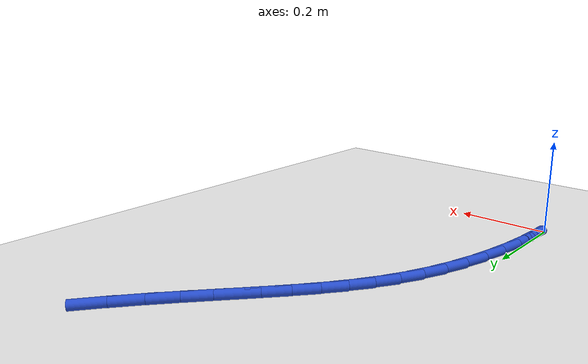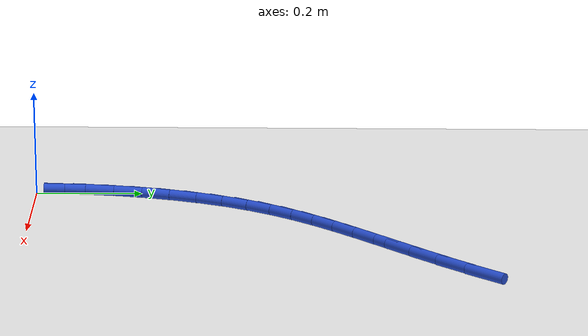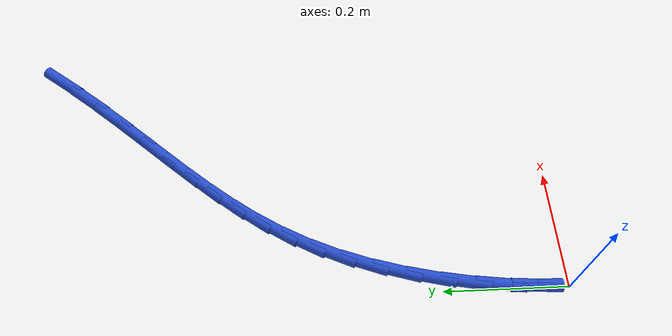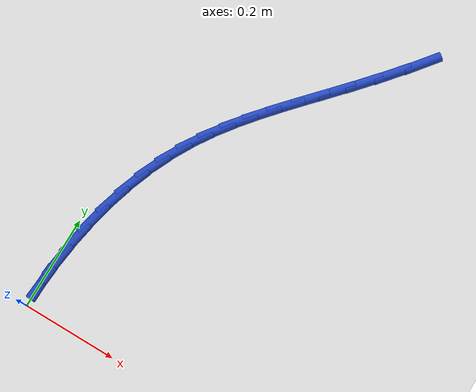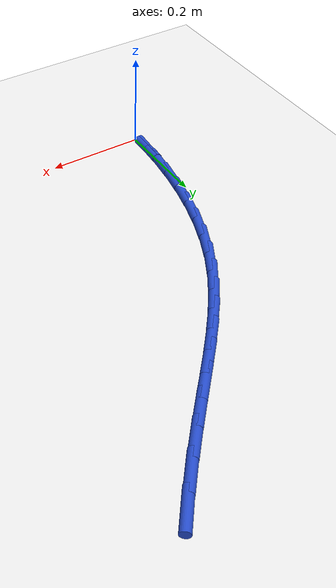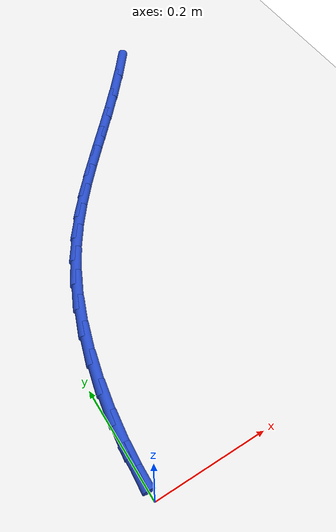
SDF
<sdf version="1.6">
 <world name="default">
  <model name="ground_plane">
   <static>1</static>
   <link name="link">
    <collision name="collision">
     <geometry><plane><normal>0 0 1</normal><size>100 100</size></plane></geometry>
     <surface><friction><ode><mu>100</mu><mu2>50</mu2></ode></friction></surface>
    </collision>
    <visual name="visual">
     <cast_shadows>0</cast_shadows>
     <geometry><plane><normal>0 0 1</normal><size>100 100</size></plane></geometry>
     <material>
      <script><uri>file://media/materials/scripts/gazebo.material</uri><name>Gazebo/WhiteGlow</name></script>
     </material>
    </visual>
   </link>
  </model>
  <model name="line">
   <link name="link_1">
    <pose>0.0014229188802898308 0.05459839344539533 0.01 0 1.57 1.4936639560395963</pose>
    <collision name="collision">
     <geometry><cylinder><radius>0.01</radius><length>0.08</length></cylinder></geometry>
    </collision>
    <visual name="visual">
     <material>
      <script><name>Gazebo/Blue</name><uri>file://media/materials/scripts/gazebo.material</uri></script>
     </material>
     <geometry><cylinder><radius>0.01</radius><length>0.08</length></cylinder></geometry>
    </visual>
   </link>
   <link name="link_2">
    <pose>0.005649222591563145 0.1092825554434124 0.01 0 1.57 1.4421383450726681</pose>
    <collision name="collision">
     <geometry><cylinder><radius>0.01</radius><length>0.08</length></cylinder></geometry>
    </collision>
    <visual name="visual">
     <material>
      <script><name>Gazebo/Blue</name><uri>file://media/materials/scripts/gazebo.material</uri></script>
     </material>
     <geometry><cylinder><radius>0.01</radius><length>0.08</length></cylinder></geometry>
    </visual>
   </link>
   <link name="link_3">
    <pose>0.012674637058225538 0.16358628323030236 0.01 0 1.57 1.3891185103644323</pose>
    <collision name="collision">
     <geometry><cylinder><radius>0.01</radius><length>0.08</length></cylinder></geometry>
    </collision>
    <visual name="visual">
     <material>
      <script><name>Gazebo/Blue</name><uri>file://media/materials/scripts/gazebo.material</uri></script>
     </material>
     <geometry><cylinder><radius>0.01</radius><length>0.08</length></cylinder></geometry>
    </visual>
   </link>
   <link name="link_4">
    <pose>0.0224948882046826 0.2170433740423164 0.01 0 1.57 1.333507791245873</pose>
    <collision name="collision">
     <geometry><cylinder><radius>0.01</radius><length>0.08</length></cylinder></geometry>
    </collision>
    <visual name="visual">
     <material>
      <script><name>Gazebo/Blue</name><uri>file://media/materials/scripts/gazebo.material</uri></script>
     </material>
     <geometry><cylinder><radius>0.01</radius><length>0.08</length></cylinder></geometry>
    </visual>
   </link>
   <link name="link_5">
    <pose>0.03510570195533986 0.26918762511570565 0.01 0 1.57 1.274110096249701</pose>
    <collision name="collision">
     <geometry><cylinder><radius>0.01</radius><length>0.08</length></cylinder></geometry>
    </collision>
    <visual name="visual">
     <material>
      <script><name>Gazebo/Blue</name><uri>file://media/materials/scripts/gazebo.material</uri></script>
     </material>
     <geometry><cylinder><radius>0.01</radius><length>0.08</length></cylinder></geometry>
    </visual>
   </link>
   <link name="link_6">
    <pose>0.05050280423460295 0.31955283368672155 0.01 0 1.57 1.2095841343453633</pose>
    <collision name="collision">
     <geometry><cylinder><radius>0.01</radius><length>0.08</length></cylinder></geometry>
    </collision>
    <visual name="visual">
     <material>
      <script><name>Gazebo/Blue</name><uri>file://media/materials/scripts/gazebo.material</uri></script>
     </material>
     <geometry><cylinder><radius>0.01</radius><length>0.08</length></cylinder></geometry>
    </visual>
   </link>
   <link name="link_7">
    <pose>0.06868192096687742 0.36767279699161515 0.01 0 1.57 1.1384117896232102</pose>
    <collision name="collision">
     <geometry><cylinder><radius>0.01</radius><length>0.08</length></cylinder></geometry>
    </collision>
    <visual name="visual">
     <material>
      <script><name>Gazebo/Blue</name><uri>file://media/materials/scripts/gazebo.material</uri></script>
     </material>
     <geometry><cylinder><radius>0.01</radius><length>0.08</length></cylinder></geometry>
    </visual>
   </link>
   <link name="link_8">
    <pose>0.08963869787432686 0.4130819203028877 0.01 0 1.57 1.062642803439044</pose>
    <collision name="collision">
     <geometry><cylinder><radius>0.01</radius><length>0.08</length></cylinder></geometry>
    </collision>
    <visual name="visual">
     <material>
      <script><name>Gazebo/Blue</name><uri>file://media/materials/scripts/gazebo.material</uri></script>
     </material>
     <geometry><cylinder><radius>0.01</radius><length>0.08</length></cylinder></geometry>
    </visual>
   </link>
   <link name="link_9">
    <pose>0.11332873403195523 0.4556182140362352 0.01 0 1.57 0.9929972902564257</pose>
    <collision name="collision">
     <geometry><cylinder><radius>0.01</radius><length>0.08</length></cylinder></geometry>
    </collision>
    <visual name="visual">
     <material>
      <script><name>Gazebo/Blue</name><uri>file://media/materials/scripts/gazebo.material</uri></script>
     </material>
     <geometry><cylinder><radius>0.01</radius><length>0.08</length></cylinder></geometry>
    </visual>
   </link>
   <link name="link_10">
    <pose>0.13960282709685687 0.49591421828082727 0.01 0 1.57 0.9342637249670979</pose>
    <collision name="collision">
     <geometry><cylinder><radius>0.01</radius><length>0.08</length></cylinder></geometry>
    </collision>
    <visual name="visual">
     <material>
      <script><name>Gazebo/Blue</name><uri>file://media/materials/scripts/gazebo.material</uri></script>
     </material>
     <geometry><cylinder><radius>0.01</radius><length>0.08</length></cylinder></geometry>
    </visual>
   </link>
   <link name="link_11">
    <pose>0.168294841850847 0.5347308461205417 0.01 0 1.57 0.8886530395660981</pose>
    <collision name="collision">
     <geometry><cylinder><radius>0.01</radius><length>0.08</length></cylinder></geometry>
    </collision>
    <visual name="visual">
     <material>
      <script><name>Gazebo/Blue</name><uri>file://media/materials/scripts/gazebo.material</uri></script>
     </material>
     <geometry><cylinder><radius>0.01</radius><length>0.08</length></cylinder></geometry>
    </visual>
   </link>
   <link name="link_12">
    <pose>0.19923864307574055 0.5728290106392558 0.01 0 1.57 0.8570912512732618</pose>
    <collision name="collision">
     <geometry><cylinder><radius>0.01</radius><length>0.08</length></cylinder></geometry>
    </collision>
    <visual name="visual">
     <material>
      <script><name>Gazebo/Blue</name><uri>file://media/materials/scripts/gazebo.material</uri></script>
     </material>
     <geometry><cylinder><radius>0.01</radius><length>0.08</length></cylinder></geometry>
    </visual>
   </link>
   <link name="link_13">
    <pose>0.23226809555335265 0.610969624920847 0.01 0 1.57 0.8394103957964334</pose>
    <collision name="collision">
     <geometry><cylinder><radius>0.01</radius><length>0.08</length></cylinder></geometry>
    </collision>
    <visual name="visual">
     <material>
      <script><name>Gazebo/Blue</name><uri>file://media/materials/scripts/gazebo.material</uri></script>
     </material>
     <geometry><cylinder><radius>0.01</radius><length>0.08</length></cylinder></geometry>
    </visual>
   </link>
   <link name="link_14">
    <pose>0.2672170640654984 0.6499136020491925 0.01 0 1.57 0.8346508001226272</pose>
    <collision name="collision">
     <geometry><cylinder><radius>0.01</radius><length>0.08</length></cylinder></geometry>
    </collision>
    <visual name="visual">
     <material>
      <script><name>Gazebo/Blue</name><uri>file://media/materials/scripts/gazebo.material</uri></script>
     </material>
     <geometry><cylinder><radius>0.01</radius><length>0.08</length></cylinder></geometry>
    </visual>
   </link>
   <link name="link_15">
    <pose>0.3039194133939929 0.6904218551081704 0.01 0 1.57 0.8413514955589014</pose>
    <collision name="collision">
     <geometry><cylinder><radius>0.01</radius><length>0.08</length></cylinder></geometry>
    </collision>
    <visual name="visual">
     <material>
      <script><name>Gazebo/Blue</name><uri>file://media/materials/scripts/gazebo.material</uri></script>
     </material>
     <geometry><cylinder><radius>0.01</radius><length>0.08</length></cylinder></geometry>
    </visual>
   </link>
   <link name="link_16">
    <pose>0.34220900832065115 0.7332552971816575 0.01 0 1.57 0.8577790385005601</pose>
    <collision name="collision">
     <geometry><cylinder><radius>0.01</radius><length>0.08</length></cylinder></geometry>
    </collision>
    <visual name="visual">
     <material>
      <script><name>Gazebo/Blue</name><uri>file://media/materials/scripts/gazebo.material</uri></script>
     </material>
     <geometry><cylinder><radius>0.01</radius><length>0.08</length></cylinder></geometry>
    </visual>
   </link>
   <link name="link_17">
    <pose>0.3819197136272883 0.7791748413535313 0.01 0 1.57 0.8820590638127545</pose>
    <collision name="collision">
     <geometry><cylinder><radius>0.01</radius><length>0.08</length></cylinder></geometry>
    </collision>
    <visual name="visual">
     <material>
      <script><name>Gazebo/Blue</name><uri>file://media/materials/scripts/gazebo.material</uri></script>
     </material>
     <geometry><cylinder><radius>0.01</radius><length>0.08</length></cylinder></geometry>
    </visual>
   </link>
   <link name="link_18">
    <pose>0.4228852840105257 0.8289377212351565 0.01 0 1.57 0.9073994049085606</pose>
    <collision name="collision">
     <geometry><cylinder><radius>0.01</radius><length>0.08</length></cylinder></geometry>
    </collision>
    <visual name="visual">
     <material>
      <script><name>Gazebo/Blue</name><uri>file://media/materials/scripts/gazebo.material</uri></script>
     </material>
     <geometry><cylinder><radius>0.01</radius><length>0.08</length></cylinder></geometry>
    </visual>
   </link>
   <link name="link_151">
    <pose>0.0014237019076508428 0.05466865269088253 0.01 0 1.57 1.5447598302968364</pose>
    <collision name="collision">
     <geometry><cylinder><radius>0.01</radius><length>0.08</length></cylinder></geometry>
    </collision>
    <visual name="visual">
     <material>
      <script><name>Gazebo/Blue</name><uri>file://media/materials/scripts/gazebo.material</uri></script>
     </material>
     <geometry><cylinder><radius>0.01</radius><length>0.08</length></cylinder></geometry>
    </visual>
   </link>
  </model>
 </world>
</sdf>
